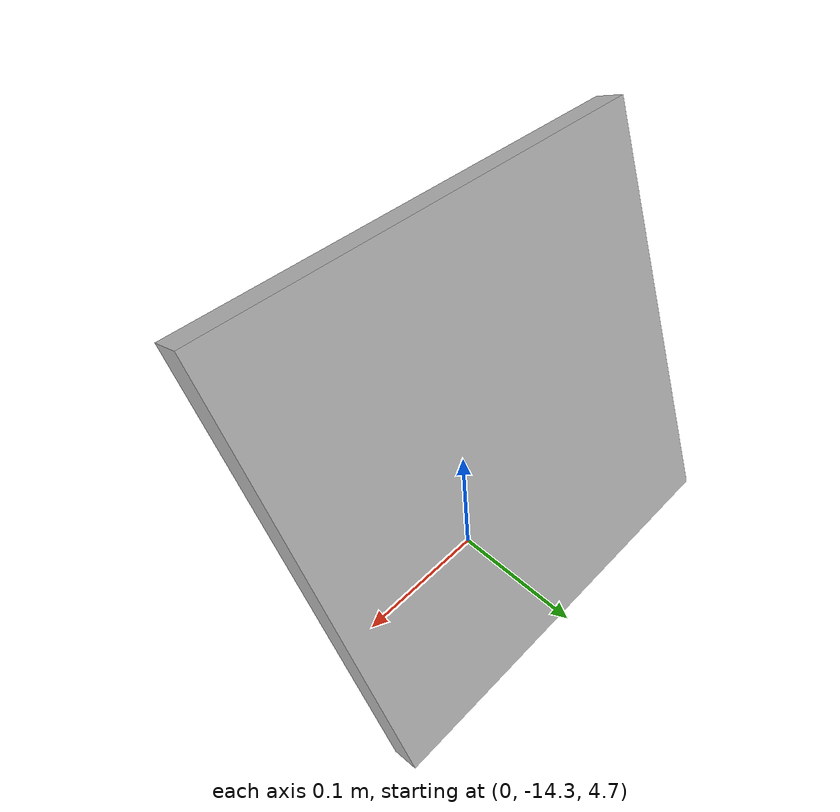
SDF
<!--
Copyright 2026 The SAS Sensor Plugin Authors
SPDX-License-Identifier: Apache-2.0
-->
<?xml version="1.0"?>
<sdf version="1.6">
  <world name="sas_point_target">
    <physics type="ode">
      <max_step_size>0.001</max_step_size>
      <real_time_factor>1.0</real_time_factor>
      <real_time_update_rate>1000</real_time_update_rate>
    </physics>
    <scene>
      <ambient>0.2 0.3 0.4 1</ambient>
      <background>0.0 0.1 0.2 1</background>
      <shadows>false</shadows>
    </scene>
    <include><uri>model://sun</uri></include>

    <!-- Sand seabed, top surface at z = 0 -->
    <model name="seabed">
      <static>true</static>
      <link name="link">
        <collision name="c">
          <pose>0 0 -0.05 0 0 0</pose>
          <geometry><box><size>400 400 0.1</size></box></geometry>
          <laser_retro>0.002</laser_retro>
        </collision>
        <visual name="v">
          <pose>0 0 -0.05 0 0 0</pose>
          <geometry><box><size>400 400 0.1</size></box></geometry>
          <laser_retro>0.002</laser_retro>
          <material><ambient>0.76 0.70 0.50 1</ambient><diffuse>0.76 0.70 0.50 1</diffuse></material>
        </visual>
      </link>
    </model>

    <!-- Plate on the array boresight at 15 m (front face 14.99 m), turned to face the array -->
    <model name="plate_target">
      <static>true</static>
      <pose>0 -14.2606 4.8565 0 0.35 -1.5708</pose>
      <link name="link">
        <collision name="c"><geometry><box><size>0.02 0.3 0.3</size></box></geometry><laser_retro>1.0</laser_retro></collision>
        <visual name="v"><geometry><box><size>0.02 0.3 0.3</size></box></geometry><laser_retro>1.0</laser_retro></visual>
      </link>
    </model>
  </world>
</sdf>
